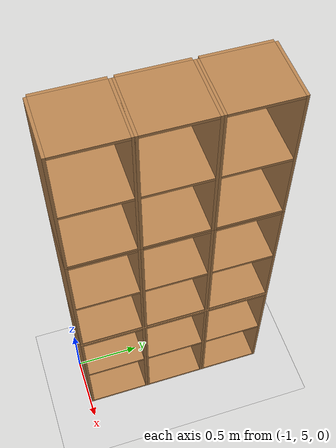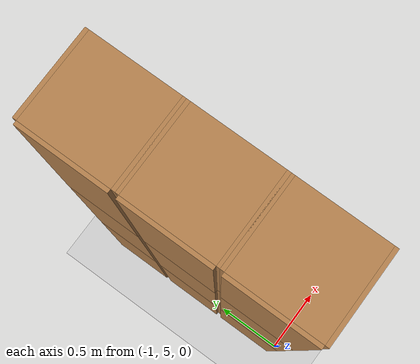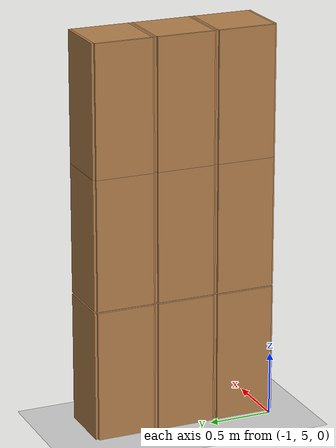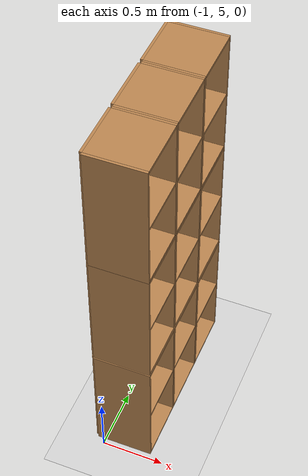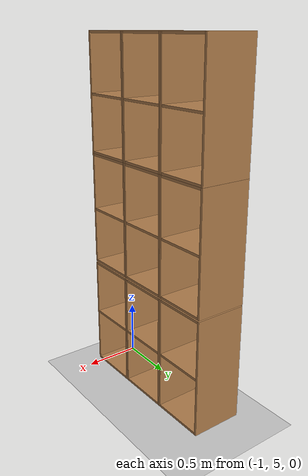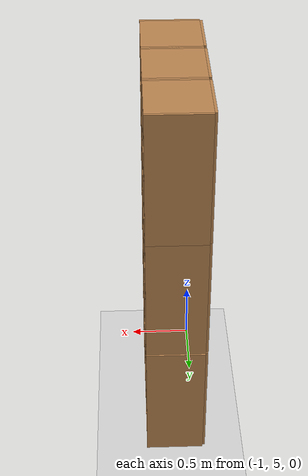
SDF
<sdf version="1.6">
 <world name="default">
  <model name="ground_plane">
   <static>1</static>
   <link name="link">
    <collision name="collision">
     <geometry><plane><normal>0 0 1</normal><size>100 100</size></plane></geometry>
     <surface>
      <contact><collide_bitmask>65535</collide_bitmask></contact>
      <friction><ode><mu>100</mu><mu2>50</mu2></ode></friction>
     </surface>
    </collision>
    <visual name="visual">
     <cast_shadows>0</cast_shadows>
     <geometry><plane><normal>0 0 1</normal><size>100 100</size></plane></geometry>
     <material>
      <script><uri>file://media/materials/scripts/gazebo.material</uri><name>Gazebo/Grey</name></script>
     </material>
    </visual>
   </link>
  </model>
  <model name="Locker18_clone_4_clone_2_clone_1_clone_clone_clone_2_clone_clone">
   <model name="Locker18">
    <model name="Locker3">
     <model name="cabinet">
      <static>1</static>
      <link name="cabinet_bottom_plate">
       <inertial>
        <pose>0 0 -1 0 -0 0</pose>
        <inertia><ixx>2.05</ixx><ixy>0</ixy><ixz>0</ixz><iyy>2.05</iyy><iyz>0</iyz><izz>2.05</izz></inertia>
        <mass>25</mass>
       </inertial>
       <collision name="cabinet_bottom_plate_geom">
        <pose>0 0 0.01 0 -0 0</pose>
        <geometry><box><size>0.45 0.45 0.02</size></box></geometry>
       </collision>
       <visual name="cabinet_bottom_plate_geom_visual">
        <pose>0 0 0.01 0 -0 0</pose>
        <geometry><box><size>0.45 0.45 0.02</size></box></geometry>
        <material>
         <script><uri>file://media/materials/scripts/gazebo.material</uri><name>Gazebo/Wood</name></script>
        </material>
       </visual>
       <collision name="cabinet_bottom_plate_geom_cabinet_back_plate">
        <pose>0.235 0 0.51 0 -0 0</pose>
        <geometry><box><size>0.02 0.45 1.02</size></box></geometry>
       </collision>
       <visual name="cabinet_bottom_plate_geom_cabinet_back_plate_visual">
        <pose>0.235 0 0.51 0 -0 0</pose>
        <geometry><box><size>0.02 0.45 1.02</size></box></geometry>
        <material>
         <script><uri>file://media/materials/scripts/gazebo.material</uri><name>Gazebo/Wood</name></script>
        </material>
       </visual>
       <collision name="cabinet_bottom_plate_geom_cabinet_left_plate">
        <pose>0 0.235 0.51 0 -0 0</pose>
        <geometry><box><size>0.45 0.02 1.02</size></box></geometry>
       </collision>
       <visual name="cabinet_bottom_plate_geom_cabinet_left_plate_visual">
        <pose>0 0.235 0.51 0 -0 0</pose>
        <geometry><box><size>0.45 0.02 1.02</size></box></geometry>
        <material>
         <script><uri>file://media/materials/scripts/gazebo.material</uri><name>Gazebo/Wood</name></script>
        </material>
       </visual>
       <collision name="cabinet_bottom_plate_geom_cabinet_middle_plate">
        <pose>0 0 0.51 0 -0 0</pose>
        <geometry><box><size>0.45 0.45 0.02</size></box></geometry>
       </collision>
       <visual name="cabinet_bottom_plate_geom_cabinet_middle_plate_visual">
        <pose>0 0 0.51 0 -0 0</pose>
        <geometry><box><size>0.45 0.45 0.02</size></box></geometry>
        <material>
         <script><uri>file://media/materials/scripts/gazebo.material</uri><name>Gazebo/Wood</name></script>
        </material>
       </visual>
       <collision name="cabinet_bottom_plate_geom_cabinet_right_plate">
        <pose>0 -0.235 0.51 0 -0 0</pose>
        <geometry><box><size>0.45 0.02 1.02</size></box></geometry>
       </collision>
       <visual name="cabinet_bottom_plate_geom_cabinet_right_plate_visual">
        <pose>0 -0.235 0.51 0 -0 0</pose>
        <geometry><box><size>0.45 0.02 1.02</size></box></geometry>
        <material>
         <script><uri>file://media/materials/scripts/gazebo.material</uri><name>Gazebo/Wood</name></script>
        </material>
       </visual>
       <collision name="cabinet_bottom_plate_geom_cabinet_top_plate">
        <pose>0 0 1.01 0 -0 0</pose>
        <geometry><box><size>0.45 0.45 0.02</size></box></geometry>
       </collision>
       <visual name="cabinet_bottom_plate_geom_cabinet_top_plate_visual">
        <pose>0 0 1.01 0 -0 0</pose>
        <geometry><box><size>0.45 0.45 0.02</size></box></geometry>
        <material>
         <script><uri>file://media/materials/scripts/gazebo.material</uri><name>Gazebo/Wood</name></script>
        </material>
       </visual>
      </link>
      <pose>-0.676968 1.45758 0 0 -0 0</pose>
     </model>
     <model name="cabinet_clone">
      <static>1</static>
      <link name="cabinet_bottom_plate">
       <inertial>
        <pose>0 0 -1 0 -0 0</pose>
        <inertia><ixx>2.05</ixx><ixy>0</ixy><ixz>0</ixz><iyy>2.05</iyy><iyz>0</iyz><izz>2.05</izz></inertia>
        <mass>25</mass>
       </inertial>
       <collision name="cabinet_bottom_plate_geom">
        <pose>0 0 0.01 0 -0 0</pose>
        <geometry><box><size>0.45 0.45 0.02</size></box></geometry>
       </collision>
       <visual name="cabinet_bottom_plate_geom_visual">
        <pose>0 0 0.01 0 -0 0</pose>
        <geometry><box><size>0.45 0.45 0.02</size></box></geometry>
        <material>
         <script><uri>file://media/materials/scripts/gazebo.material</uri><name>Gazebo/Wood</name></script>
        </material>
       </visual>
       <collision name="cabinet_bottom_plate_geom_cabinet_back_plate">
        <pose>0.235 0 0.51 0 -0 0</pose>
        <geometry><box><size>0.02 0.45 1.02</size></box></geometry>
       </collision>
       <visual name="cabinet_bottom_plate_geom_cabinet_back_plate_visual">
        <pose>0.235 0 0.51 0 -0 0</pose>
        <geometry><box><size>0.02 0.45 1.02</size></box></geometry>
        <material>
         <script><uri>file://media/materials/scripts/gazebo.material</uri><name>Gazebo/Wood</name></script>
        </material>
       </visual>
       <collision name="cabinet_bottom_plate_geom_cabinet_left_plate">
        <pose>0 0.235 0.51 0 -0 0</pose>
        <geometry><box><size>0.45 0.02 1.02</size></box></geometry>
       </collision>
       <visual name="cabinet_bottom_plate_geom_cabinet_left_plate_visual">
        <pose>0 0.235 0.51 0 -0 0</pose>
        <geometry><box><size>0.45 0.02 1.02</size></box></geometry>
        <material>
         <script><uri>file://media/materials/scripts/gazebo.material</uri><name>Gazebo/Wood</name></script>
        </material>
       </visual>
       <collision name="cabinet_bottom_plate_geom_cabinet_middle_plate">
        <pose>0 0 0.51 0 -0 0</pose>
        <geometry><box><size>0.45 0.45 0.02</size></box></geometry>
       </collision>
       <visual name="cabinet_bottom_plate_geom_cabinet_middle_plate_visual">
        <pose>0 0 0.51 0 -0 0</pose>
        <geometry><box><size>0.45 0.45 0.02</size></box></geometry>
        <material>
         <script><uri>file://media/materials/scripts/gazebo.material</uri><name>Gazebo/Wood</name></script>
        </material>
       </visual>
       <collision name="cabinet_bottom_plate_geom_cabinet_right_plate">
        <pose>0 -0.235 0.51 0 -0 0</pose>
        <geometry><box><size>0.45 0.02 1.02</size></box></geometry>
       </collision>
       <visual name="cabinet_bottom_plate_geom_cabinet_right_plate_visual">
        <pose>0 -0.235 0.51 0 -0 0</pose>
        <geometry><box><size>0.45 0.02 1.02</size></box></geometry>
        <material>
         <script><uri>file://media/materials/scripts/gazebo.material</uri><name>Gazebo/Wood</name></script>
        </material>
       </visual>
       <collision name="cabinet_bottom_plate_geom_cabinet_top_plate">
        <pose>0 0 1.01 0 -0 0</pose>
        <geometry><box><size>0.45 0.45 0.02</size></box></geometry>
       </collision>
       <visual name="cabinet_bottom_plate_geom_cabinet_top_plate_visual">
        <pose>0 0 1.01 0 -0 0</pose>
        <geometry><box><size>0.45 0.45 0.02</size></box></geometry>
        <material>
         <script><uri>file://media/materials/scripts/gazebo.material</uri><name>Gazebo/Wood</name></script>
        </material>
       </visual>
      </link>
      <pose>-0.676968 0.970971 0 0 -0 0</pose>
     </model>
     <model name="cabinet_clone_0">
      <static>1</static>
      <link name="cabinet_bottom_plate">
       <inertial>
        <pose>0 0 -1 0 -0 0</pose>
        <inertia><ixx>2.05</ixx><ixy>0</ixy><ixz>0</ixz><iyy>2.05</iyy><iyz>0</iyz><izz>2.05</izz></inertia>
        <mass>25</mass>
       </inertial>
       <collision name="cabinet_bottom_plate_geom">
        <pose>0 0 0.01 0 -0 0</pose>
        <geometry><box><size>0.45 0.45 0.02</size></box></geometry>
       </collision>
       <visual name="cabinet_bottom_plate_geom_visual">
        <pose>0 0 0.01 0 -0 0</pose>
        <geometry><box><size>0.45 0.45 0.02</size></box></geometry>
        <material>
         <script><uri>file://media/materials/scripts/gazebo.material</uri><name>Gazebo/Wood</name></script>
        </material>
       </visual>
       <collision name="cabinet_bottom_plate_geom_cabinet_back_plate">
        <pose>0.235 0 0.51 0 -0 0</pose>
        <geometry><box><size>0.02 0.45 1.02</size></box></geometry>
       </collision>
       <visual name="cabinet_bottom_plate_geom_cabinet_back_plate_visual">
        <pose>0.235 0 0.51 0 -0 0</pose>
        <geometry><box><size>0.02 0.45 1.02</size></box></geometry>
        <material>
         <script><uri>file://media/materials/scripts/gazebo.material</uri><name>Gazebo/Wood</name></script>
        </material>
       </visual>
       <collision name="cabinet_bottom_plate_geom_cabinet_left_plate">
        <pose>0 0.235 0.51 0 -0 0</pose>
        <geometry><box><size>0.45 0.02 1.02</size></box></geometry>
       </collision>
       <visual name="cabinet_bottom_plate_geom_cabinet_left_plate_visual">
        <pose>0 0.235 0.51 0 -0 0</pose>
        <geometry><box><size>0.45 0.02 1.02</size></box></geometry>
        <material>
         <script><uri>file://media/materials/scripts/gazebo.material</uri><name>Gazebo/Wood</name></script>
        </material>
       </visual>
       <collision name="cabinet_bottom_plate_geom_cabinet_middle_plate">
        <pose>0 0 0.51 0 -0 0</pose>
        <geometry><box><size>0.45 0.45 0.02</size></box></geometry>
       </collision>
       <visual name="cabinet_bottom_plate_geom_cabinet_middle_plate_visual">
        <pose>0 0 0.51 0 -0 0</pose>
        <geometry><box><size>0.45 0.45 0.02</size></box></geometry>
        <material>
         <script><uri>file://media/materials/scripts/gazebo.material</uri><name>Gazebo/Wood</name></script>
        </material>
       </visual>
       <collision name="cabinet_bottom_plate_geom_cabinet_right_plate">
        <pose>0 -0.235 0.51 0 -0 0</pose>
        <geometry><box><size>0.45 0.02 1.02</size></box></geometry>
       </collision>
       <visual name="cabinet_bottom_plate_geom_cabinet_right_plate_visual">
        <pose>0 -0.235 0.51 0 -0 0</pose>
        <geometry><box><size>0.45 0.02 1.02</size></box></geometry>
        <material>
         <script><uri>file://media/materials/scripts/gazebo.material</uri><name>Gazebo/Wood</name></script>
        </material>
       </visual>
       <collision name="cabinet_bottom_plate_geom_cabinet_top_plate">
        <pose>0 0 1.01 0 -0 0</pose>
        <geometry><box><size>0.45 0.45 0.02</size></box></geometry>
       </collision>
       <visual name="cabinet_bottom_plate_geom_cabinet_top_plate_visual">
        <pose>0 0 1.01 0 -0 0</pose>
        <geometry><box><size>0.45 0.45 0.02</size></box></geometry>
        <material>
         <script><uri>file://media/materials/scripts/gazebo.material</uri><name>Gazebo/Wood</name></script>
        </material>
       </visual>
      </link>
      <pose>-0.676968 0.48391 0 0 -0 0</pose>
     </model>
     <static>0</static>
     <pose>0 3e-06 -1.02763 0 -0 0</pose>
    </model>
    <model name="Locker3_clone">
     <model name="cabinet">
      <static>1</static>
      <link name="cabinet_bottom_plate">
       <inertial>
        <pose>0 0 -1 0 -0 0</pose>
        <inertia><ixx>2.05</ixx><ixy>0</ixy><ixz>0</ixz><iyy>2.05</iyy><iyz>0</iyz><izz>2.05</izz></inertia>
        <mass>25</mass>
       </inertial>
       <collision name="cabinet_bottom_plate_geom">
        <pose>0 0 0.01 0 -0 0</pose>
        <geometry><box><size>0.45 0.45 0.02</size></box></geometry>
       </collision>
       <visual name="cabinet_bottom_plate_geom_visual">
        <pose>0 0 0.01 0 -0 0</pose>
        <geometry><box><size>0.45 0.45 0.02</size></box></geometry>
        <material>
         <script><uri>file://media/materials/scripts/gazebo.material</uri><name>Gazebo/Wood</name></script>
        </material>
       </visual>
       <collision name="cabinet_bottom_plate_geom_cabinet_back_plate">
        <pose>0.235 0 0.51 0 -0 0</pose>
        <geometry><box><size>0.02 0.45 1.02</size></box></geometry>
       </collision>
       <visual name="cabinet_bottom_plate_geom_cabinet_back_plate_visual">
        <pose>0.235 0 0.51 0 -0 0</pose>
        <geometry><box><size>0.02 0.45 1.02</size></box></geometry>
        <material>
         <script><uri>file://media/materials/scripts/gazebo.material</uri><name>Gazebo/Wood</name></script>
        </material>
       </visual>
       <collision name="cabinet_bottom_plate_geom_cabinet_left_plate">
        <pose>0 0.235 0.51 0 -0 0</pose>
        <geometry><box><size>0.45 0.02 1.02</size></box></geometry>
       </collision>
       <visual name="cabinet_bottom_plate_geom_cabinet_left_plate_visual">
        <pose>0 0.235 0.51 0 -0 0</pose>
        <geometry><box><size>0.45 0.02 1.02</size></box></geometry>
        <material>
         <script><uri>file://media/materials/scripts/gazebo.material</uri><name>Gazebo/Wood</name></script>
        </material>
       </visual>
       <collision name="cabinet_bottom_plate_geom_cabinet_middle_plate">
        <pose>0 0 0.51 0 -0 0</pose>
        <geometry><box><size>0.45 0.45 0.02</size></box></geometry>
       </collision>
       <visual name="cabinet_bottom_plate_geom_cabinet_middle_plate_visual">
        <pose>0 0 0.51 0 -0 0</pose>
        <geometry><box><size>0.45 0.45 0.02</size></box></geometry>
        <material>
         <script><uri>file://media/materials/scripts/gazebo.material</uri><name>Gazebo/Wood</name></script>
        </material>
       </visual>
       <collision name="cabinet_bottom_plate_geom_cabinet_right_plate">
        <pose>0 -0.235 0.51 0 -0 0</pose>
        <geometry><box><size>0.45 0.02 1.02</size></box></geometry>
       </collision>
       <visual name="cabinet_bottom_plate_geom_cabinet_right_plate_visual">
        <pose>0 -0.235 0.51 0 -0 0</pose>
        <geometry><box><size>0.45 0.02 1.02</size></box></geometry>
        <material>
         <script><uri>file://media/materials/scripts/gazebo.material</uri><name>Gazebo/Wood</name></script>
        </material>
       </visual>
       <collision name="cabinet_bottom_plate_geom_cabinet_top_plate">
        <pose>0 0 1.01 0 -0 0</pose>
        <geometry><box><size>0.45 0.45 0.02</size></box></geometry>
       </collision>
       <visual name="cabinet_bottom_plate_geom_cabinet_top_plate_visual">
        <pose>0 0 1.01 0 -0 0</pose>
        <geometry><box><size>0.45 0.45 0.02</size></box></geometry>
        <material>
         <script><uri>file://media/materials/scripts/gazebo.material</uri><name>Gazebo/Wood</name></script>
        </material>
       </visual>
      </link>
      <pose>-0.676968 1.45758 0 0 -0 0</pose>
     </model>
     <model name="cabinet_clone">
      <static>1</static>
      <link name="cabinet_bottom_plate">
       <inertial>
        <pose>0 0 -1 0 -0 0</pose>
        <inertia><ixx>2.05</ixx><ixy>0</ixy><ixz>0</ixz><iyy>2.05</iyy><iyz>0</iyz><izz>2.05</izz></inertia>
        <mass>25</mass>
       </inertial>
       <collision name="cabinet_bottom_plate_geom">
        <pose>0 0 0.01 0 -0 0</pose>
        <geometry><box><size>0.45 0.45 0.02</size></box></geometry>
       </collision>
       <visual name="cabinet_bottom_plate_geom_visual">
        <pose>0 0 0.01 0 -0 0</pose>
        <geometry><box><size>0.45 0.45 0.02</size></box></geometry>
        <material>
         <script><uri>file://media/materials/scripts/gazebo.material</uri><name>Gazebo/Wood</name></script>
        </material>
       </visual>
       <collision name="cabinet_bottom_plate_geom_cabinet_back_plate">
        <pose>0.235 0 0.51 0 -0 0</pose>
        <geometry><box><size>0.02 0.45 1.02</size></box></geometry>
       </collision>
       <visual name="cabinet_bottom_plate_geom_cabinet_back_plate_visual">
        <pose>0.235 0 0.51 0 -0 0</pose>
        <geometry><box><size>0.02 0.45 1.02</size></box></geometry>
        <material>
         <script><uri>file://media/materials/scripts/gazebo.material</uri><name>Gazebo/Wood</name></script>
        </material>
       </visual>
       <collision name="cabinet_bottom_plate_geom_cabinet_left_plate">
        <pose>0 0.235 0.51 0 -0 0</pose>
        <geometry><box><size>0.45 0.02 1.02</size></box></geometry>
       </collision>
       <visual name="cabinet_bottom_plate_geom_cabinet_left_plate_visual">
        <pose>0 0.235 0.51 0 -0 0</pose>
        <geometry><box><size>0.45 0.02 1.02</size></box></geometry>
        <material>
         <script><uri>file://media/materials/scripts/gazebo.material</uri><name>Gazebo/Wood</name></script>
        </material>
       </visual>
       <collision name="cabinet_bottom_plate_geom_cabinet_middle_plate">
        <pose>0 0 0.51 0 -0 0</pose>
        <geometry><box><size>0.45 0.45 0.02</size></box></geometry>
       </collision>
       <visual name="cabinet_bottom_plate_geom_cabinet_middle_plate_visual">
        <pose>0 0 0.51 0 -0 0</pose>
        <geometry><box><size>0.45 0.45 0.02</size></box></geometry>
        <material>
         <script><uri>file://media/materials/scripts/gazebo.material</uri><name>Gazebo/Wood</name></script>
        </material>
       </visual>
       <collision name="cabinet_bottom_plate_geom_cabinet_right_plate">
        <pose>0 -0.235 0.51 0 -0 0</pose>
        <geometry><box><size>0.45 0.02 1.02</size></box></geometry>
       </collision>
       <visual name="cabinet_bottom_plate_geom_cabinet_right_plate_visual">
        <pose>0 -0.235 0.51 0 -0 0</pose>
        <geometry><box><size>0.45 0.02 1.02</size></box></geometry>
        <material>
         <script><uri>file://media/materials/scripts/gazebo.material</uri><name>Gazebo/Wood</name></script>
        </material>
       </visual>
       <collision name="cabinet_bottom_plate_geom_cabinet_top_plate">
        <pose>0 0 1.01 0 -0 0</pose>
        <geometry><box><size>0.45 0.45 0.02</size></box></geometry>
       </collision>
       <visual name="cabinet_bottom_plate_geom_cabinet_top_plate_visual">
        <pose>0 0 1.01 0 -0 0</pose>
        <geometry><box><size>0.45 0.45 0.02</size></box></geometry>
        <material>
         <script><uri>file://media/materials/scripts/gazebo.material</uri><name>Gazebo/Wood</name></script>
        </material>
       </visual>
      </link>
      <pose>-0.676968 0.970971 0 0 -0 0</pose>
     </model>
     <model name="cabinet_clone_0">
      <static>1</static>
      <link name="cabinet_bottom_plate">
       <inertial>
        <pose>0 0 -1 0 -0 0</pose>
        <inertia><ixx>2.05</ixx><ixy>0</ixy><ixz>0</ixz><iyy>2.05</iyy><iyz>0</iyz><izz>2.05</izz></inertia>
        <mass>25</mass>
       </inertial>
       <collision name="cabinet_bottom_plate_geom">
        <pose>0 0 0.01 0 -0 0</pose>
        <geometry><box><size>0.45 0.45 0.02</size></box></geometry>
       </collision>
       <visual name="cabinet_bottom_plate_geom_visual">
        <pose>0 0 0.01 0 -0 0</pose>
        <geometry><box><size>0.45 0.45 0.02</size></box></geometry>
        <material>
         <script><uri>file://media/materials/scripts/gazebo.material</uri><name>Gazebo/Wood</name></script>
        </material>
       </visual>
       <collision name="cabinet_bottom_plate_geom_cabinet_back_plate">
        <pose>0.235 0 0.51 0 -0 0</pose>
        <geometry><box><size>0.02 0.45 1.02</size></box></geometry>
       </collision>
       <visual name="cabinet_bottom_plate_geom_cabinet_back_plate_visual">
        <pose>0.235 0 0.51 0 -0 0</pose>
        <geometry><box><size>0.02 0.45 1.02</size></box></geometry>
        <material>
         <script><uri>file://media/materials/scripts/gazebo.material</uri><name>Gazebo/Wood</name></script>
        </material>
       </visual>
       <collision name="cabinet_bottom_plate_geom_cabinet_left_plate">
        <pose>0 0.235 0.51 0 -0 0</pose>
        <geometry><box><size>0.45 0.02 1.02</size></box></geometry>
       </collision>
       <visual name="cabinet_bottom_plate_geom_cabinet_left_plate_visual">
        <pose>0 0.235 0.51 0 -0 0</pose>
        <geometry><box><size>0.45 0.02 1.02</size></box></geometry>
        <material>
         <script><uri>file://media/materials/scripts/gazebo.material</uri><name>Gazebo/Wood</name></script>
        </material>
       </visual>
       <collision name="cabinet_bottom_plate_geom_cabinet_middle_plate">
        <pose>0 0 0.51 0 -0 0</pose>
        <geometry><box><size>0.45 0.45 0.02</size></box></geometry>
       </collision>
       <visual name="cabinet_bottom_plate_geom_cabinet_middle_plate_visual">
        <pose>0 0 0.51 0 -0 0</pose>
        <geometry><box><size>0.45 0.45 0.02</size></box></geometry>
        <material>
         <script><uri>file://media/materials/scripts/gazebo.material</uri><name>Gazebo/Wood</name></script>
        </material>
       </visual>
       <collision name="cabinet_bottom_plate_geom_cabinet_right_plate">
        <pose>0 -0.235 0.51 0 -0 0</pose>
        <geometry><box><size>0.45 0.02 1.02</size></box></geometry>
       </collision>
       <visual name="cabinet_bottom_plate_geom_cabinet_right_plate_visual">
        <pose>0 -0.235 0.51 0 -0 0</pose>
        <geometry><box><size>0.45 0.02 1.02</size></box></geometry>
        <material>
         <script><uri>file://media/materials/scripts/gazebo.material</uri><name>Gazebo/Wood</name></script>
        </material>
       </visual>
       <collision name="cabinet_bottom_plate_geom_cabinet_top_plate">
        <pose>0 0 1.01 0 -0 0</pose>
        <geometry><box><size>0.45 0.45 0.02</size></box></geometry>
       </collision>
       <visual name="cabinet_bottom_plate_geom_cabinet_top_plate_visual">
        <pose>0 0 1.01 0 -0 0</pose>
        <geometry><box><size>0.45 0.45 0.02</size></box></geometry>
        <material>
         <script><uri>file://media/materials/scripts/gazebo.material</uri><name>Gazebo/Wood</name></script>
        </material>
       </visual>
      </link>
      <pose>-0.676968 0.48391 0 0 -0 0</pose>
     </model>
     <static>0</static>
     <pose>0 3e-06 0.003717 0 -0 0</pose>
    </model>
    <model name="Locker3_clone_clone">
     <model name="cabinet">
      <static>1</static>
      <link name="cabinet_bottom_plate">
       <inertial>
        <pose>0 0 -1 0 -0 0</pose>
        <inertia><ixx>2.05</ixx><ixy>0</ixy><ixz>0</ixz><iyy>2.05</iyy><iyz>0</iyz><izz>2.05</izz></inertia>
        <mass>25</mass>
       </inertial>
       <collision name="cabinet_bottom_plate_geom">
        <pose>0 0 0.01 0 -0 0</pose>
        <geometry><box><size>0.45 0.45 0.02</size></box></geometry>
       </collision>
       <visual name="cabinet_bottom_plate_geom_visual">
        <pose>0 0 0.01 0 -0 0</pose>
        <geometry><box><size>0.45 0.45 0.02</size></box></geometry>
        <material>
         <script><uri>file://media/materials/scripts/gazebo.material</uri><name>Gazebo/Wood</name></script>
        </material>
       </visual>
       <collision name="cabinet_bottom_plate_geom_cabinet_back_plate">
        <pose>0.235 0 0.51 0 -0 0</pose>
        <geometry><box><size>0.02 0.45 1.02</size></box></geometry>
       </collision>
       <visual name="cabinet_bottom_plate_geom_cabinet_back_plate_visual">
        <pose>0.235 0 0.51 0 -0 0</pose>
        <geometry><box><size>0.02 0.45 1.02</size></box></geometry>
        <material>
         <script><uri>file://media/materials/scripts/gazebo.material</uri><name>Gazebo/Wood</name></script>
        </material>
       </visual>
       <collision name="cabinet_bottom_plate_geom_cabinet_left_plate">
        <pose>0 0.235 0.51 0 -0 0</pose>
        <geometry><box><size>0.45 0.02 1.02</size></box></geometry>
       </collision>
       <visual name="cabinet_bottom_plate_geom_cabinet_left_plate_visual">
        <pose>0 0.235 0.51 0 -0 0</pose>
        <geometry><box><size>0.45 0.02 1.02</size></box></geometry>
        <material>
         <script><uri>file://media/materials/scripts/gazebo.material</uri><name>Gazebo/Wood</name></script>
        </material>
       </visual>
       <collision name="cabinet_bottom_plate_geom_cabinet_middle_plate">
        <pose>0 0 0.51 0 -0 0</pose>
        <geometry><box><size>0.45 0.45 0.02</size></box></geometry>
       </collision>
       <visual name="cabinet_bottom_plate_geom_cabinet_middle_plate_visual">
        <pose>0 0 0.51 0 -0 0</pose>
        <geometry><box><size>0.45 0.45 0.02</size></box></geometry>
        <material>
         <script><uri>file://media/materials/scripts/gazebo.material</uri><name>Gazebo/Wood</name></script>
        </material>
       </visual>
       <collision name="cabinet_bottom_plate_geom_cabinet_right_plate">
        <pose>0 -0.235 0.51 0 -0 0</pose>
        <geometry><box><size>0.45 0.02 1.02</size></box></geometry>
       </collision>
       <visual name="cabinet_bottom_plate_geom_cabinet_right_plate_visual">
        <pose>0 -0.235 0.51 0 -0 0</pose>
        <geometry><box><size>0.45 0.02 1.02</size></box></geometry>
        <material>
         <script><uri>file://media/materials/scripts/gazebo.material</uri><name>Gazebo/Wood</name></script>
        </material>
       </visual>
       <collision name="cabinet_bottom_plate_geom_cabinet_top_plate">
        <pose>0 0 1.01 0 -0 0</pose>
        <geometry><box><size>0.45 0.45 0.02</size></box></geometry>
       </collision>
       <visual name="cabinet_bottom_plate_geom_cabinet_top_plate_visual">
        <pose>0 0 1.01 0 -0 0</pose>
        <geometry><box><size>0.45 0.45 0.02</size></box></geometry>
        <material>
         <script><uri>file://media/materials/scripts/gazebo.material</uri><name>Gazebo/Wood</name></script>
        </material>
       </visual>
      </link>
      <pose>-0.676968 1.45758 0 0 -0 0</pose>
     </model>
     <model name="cabinet_clone">
      <static>1</static>
      <link name="cabinet_bottom_plate">
       <inertial>
        <pose>0 0 -1 0 -0 0</pose>
        <inertia><ixx>2.05</ixx><ixy>0</ixy><ixz>0</ixz><iyy>2.05</iyy><iyz>0</iyz><izz>2.05</izz></inertia>
        <mass>25</mass>
       </inertial>
       <collision name="cabinet_bottom_plate_geom">
        <pose>0 0 0.01 0 -0 0</pose>
        <geometry><box><size>0.45 0.45 0.02</size></box></geometry>
       </collision>
       <visual name="cabinet_bottom_plate_geom_visual">
        <pose>0 0 0.01 0 -0 0</pose>
        <geometry><box><size>0.45 0.45 0.02</size></box></geometry>
        <material>
         <script><uri>file://media/materials/scripts/gazebo.material</uri><name>Gazebo/Wood</name></script>
        </material>
       </visual>
       <collision name="cabinet_bottom_plate_geom_cabinet_back_plate">
        <pose>0.235 0 0.51 0 -0 0</pose>
        <geometry><box><size>0.02 0.45 1.02</size></box></geometry>
       </collision>
       <visual name="cabinet_bottom_plate_geom_cabinet_back_plate_visual">
        <pose>0.235 0 0.51 0 -0 0</pose>
        <geometry><box><size>0.02 0.45 1.02</size></box></geometry>
        <material>
         <script><uri>file://media/materials/scripts/gazebo.material</uri><name>Gazebo/Wood</name></script>
        </material>
       </visual>
       <collision name="cabinet_bottom_plate_geom_cabinet_left_plate">
        <pose>0 0.235 0.51 0 -0 0</pose>
        <geometry><box><size>0.45 0.02 1.02</size></box></geometry>
       </collision>
       <visual name="cabinet_bottom_plate_geom_cabinet_left_plate_visual">
        <pose>0 0.235 0.51 0 -0 0</pose>
        <geometry><box><size>0.45 0.02 1.02</size></box></geometry>
        <material>
         <script><uri>file://media/materials/scripts/gazebo.material</uri><name>Gazebo/Wood</name></script>
        </material>
       </visual>
       <collision name="cabinet_bottom_plate_geom_cabinet_middle_plate">
        <pose>0 0 0.51 0 -0 0</pose>
        <geometry><box><size>0.45 0.45 0.02</size></box></geometry>
       </collision>
       <visual name="cabinet_bottom_plate_geom_cabinet_middle_plate_visual">
        <pose>0 0 0.51 0 -0 0</pose>
        <geometry><box><size>0.45 0.45 0.02</size></box></geometry>
        <material>
         <script><uri>file://media/materials/scripts/gazebo.material</uri><name>Gazebo/Wood</name></script>
        </material>
       </visual>
       <collision name="cabinet_bottom_plate_geom_cabinet_right_plate">
        <pose>0 -0.235 0.51 0 -0 0</pose>
        <geometry><box><size>0.45 0.02 1.02</size></box></geometry>
       </collision>
       <visual name="cabinet_bottom_plate_geom_cabinet_right_plate_visual">
        <pose>0 -0.235 0.51 0 -0 0</pose>
        <geometry><box><size>0.45 0.02 1.02</size></box></geometry>
        <material>
         <script><uri>file://media/materials/scripts/gazebo.material</uri><name>Gazebo/Wood</name></script>
        </material>
       </visual>
       <collision name="cabinet_bottom_plate_geom_cabinet_top_plate">
        <pose>0 0 1.01 0 -0 0</pose>
        <geometry><box><size>0.45 0.45 0.02</size></box></geometry>
       </collision>
       <visual name="cabinet_bottom_plate_geom_cabinet_top_plate_visual">
        <pose>0 0 1.01 0 -0 0</pose>
        <geometry><box><size>0.45 0.45 0.02</size></box></geometry>
        <material>
         <script><uri>file://media/materials/scripts/gazebo.material</uri><name>Gazebo/Wood</name></script>
        </material>
       </visual>
      </link>
      <pose>-0.676968 0.970971 0 0 -0 0</pose>
     </model>
     <model name="cabinet_clone_0">
      <static>1</static>
      <link name="cabinet_bottom_plate">
       <inertial>
        <pose>0 0 -1 0 -0 0</pose>
        <inertia><ixx>2.05</ixx><ixy>0</ixy><ixz>0</ixz><iyy>2.05</iyy><iyz>0</iyz><izz>2.05</izz></inertia>
        <mass>25</mass>
       </inertial>
       <collision name="cabinet_bottom_plate_geom">
        <pose>0 0 0.01 0 -0 0</pose>
        <geometry><box><size>0.45 0.45 0.02</size></box></geometry>
       </collision>
       <visual name="cabinet_bottom_plate_geom_visual">
        <pose>0 0 0.01 0 -0 0</pose>
        <geometry><box><size>0.45 0.45 0.02</size></box></geometry>
        <material>
         <script><uri>file://media/materials/scripts/gazebo.material</uri><name>Gazebo/Wood</name></script>
        </material>
       </visual>
       <collision name="cabinet_bottom_plate_geom_cabinet_back_plate">
        <pose>0.235 0 0.51 0 -0 0</pose>
        <geometry><box><size>0.02 0.45 1.02</size></box></geometry>
       </collision>
       <visual name="cabinet_bottom_plate_geom_cabinet_back_plate_visual">
        <pose>0.235 0 0.51 0 -0 0</pose>
        <geometry><box><size>0.02 0.45 1.02</size></box></geometry>
        <material>
         <script><uri>file://media/materials/scripts/gazebo.material</uri><name>Gazebo/Wood</name></script>
        </material>
       </visual>
       <collision name="cabinet_bottom_plate_geom_cabinet_left_plate">
        <pose>0 0.235 0.51 0 -0 0</pose>
        <geometry><box><size>0.45 0.02 1.02</size></box></geometry>
       </collision>
       <visual name="cabinet_bottom_plate_geom_cabinet_left_plate_visual">
        <pose>0 0.235 0.51 0 -0 0</pose>
        <geometry><box><size>0.45 0.02 1.02</size></box></geometry>
        <material>
         <script><uri>file://media/materials/scripts/gazebo.material</uri><name>Gazebo/Wood</name></script>
        </material>
       </visual>
       <collision name="cabinet_bottom_plate_geom_cabinet_middle_plate">
        <pose>0 0 0.51 0 -0 0</pose>
        <geometry><box><size>0.45 0.45 0.02</size></box></geometry>
       </collision>
       <visual name="cabinet_bottom_plate_geom_cabinet_middle_plate_visual">
        <pose>0 0 0.51 0 -0 0</pose>
        <geometry><box><size>0.45 0.45 0.02</size></box></geometry>
        <material>
         <script><uri>file://media/materials/scripts/gazebo.material</uri><name>Gazebo/Wood</name></script>
        </material>
       </visual>
       <collision name="cabinet_bottom_plate_geom_cabinet_right_plate">
        <pose>0 -0.235 0.51 0 -0 0</pose>
        <geometry><box><size>0.45 0.02 1.02</size></box></geometry>
       </collision>
       <visual name="cabinet_bottom_plate_geom_cabinet_right_plate_visual">
        <pose>0 -0.235 0.51 0 -0 0</pose>
        <geometry><box><size>0.45 0.02 1.02</size></box></geometry>
        <material>
         <script><uri>file://media/materials/scripts/gazebo.material</uri><name>Gazebo/Wood</name></script>
        </material>
       </visual>
       <collision name="cabinet_bottom_plate_geom_cabinet_top_plate">
        <pose>0 0 1.01 0 -0 0</pose>
        <geometry><box><size>0.45 0.45 0.02</size></box></geometry>
       </collision>
       <visual name="cabinet_bottom_plate_geom_cabinet_top_plate_visual">
        <pose>0 0 1.01 0 -0 0</pose>
        <geometry><box><size>0.45 0.45 0.02</size></box></geometry>
        <material>
         <script><uri>file://media/materials/scripts/gazebo.material</uri><name>Gazebo/Wood</name></script>
        </material>
       </visual>
      </link>
      <pose>-0.676968 0.48391 0 0 -0 0</pose>
     </model>
     <static>0</static>
     <pose>0 3e-06 1.02391 0 -0 0</pose>
    </model>
    <static>0</static>
    <pose>-0 4e-06 4e-06 0 -0 0</pose>
   </model>
   <static>0</static>
   <pose>-1.4992 6.71304 1.08672 0 -0 3.14119</pose>
  </model>
 </world>
</sdf>
